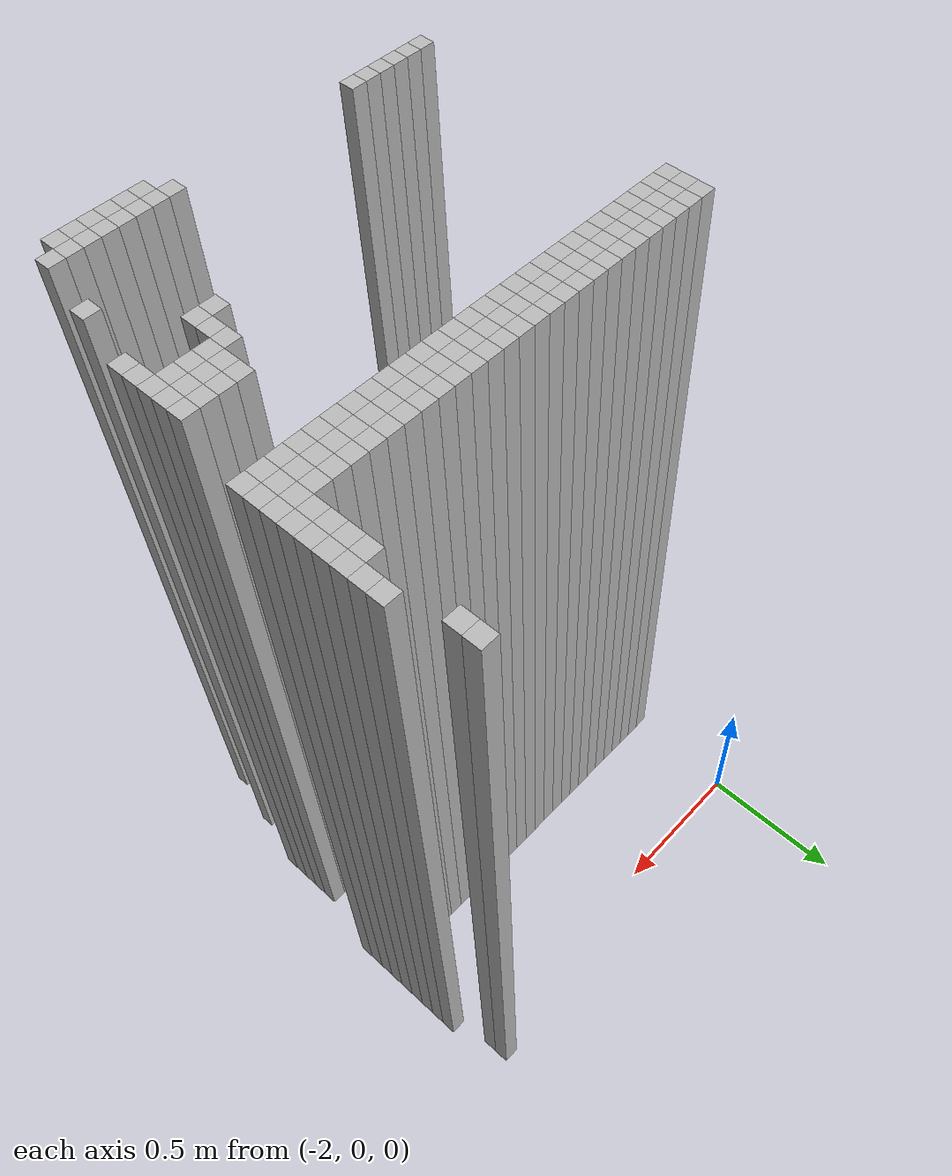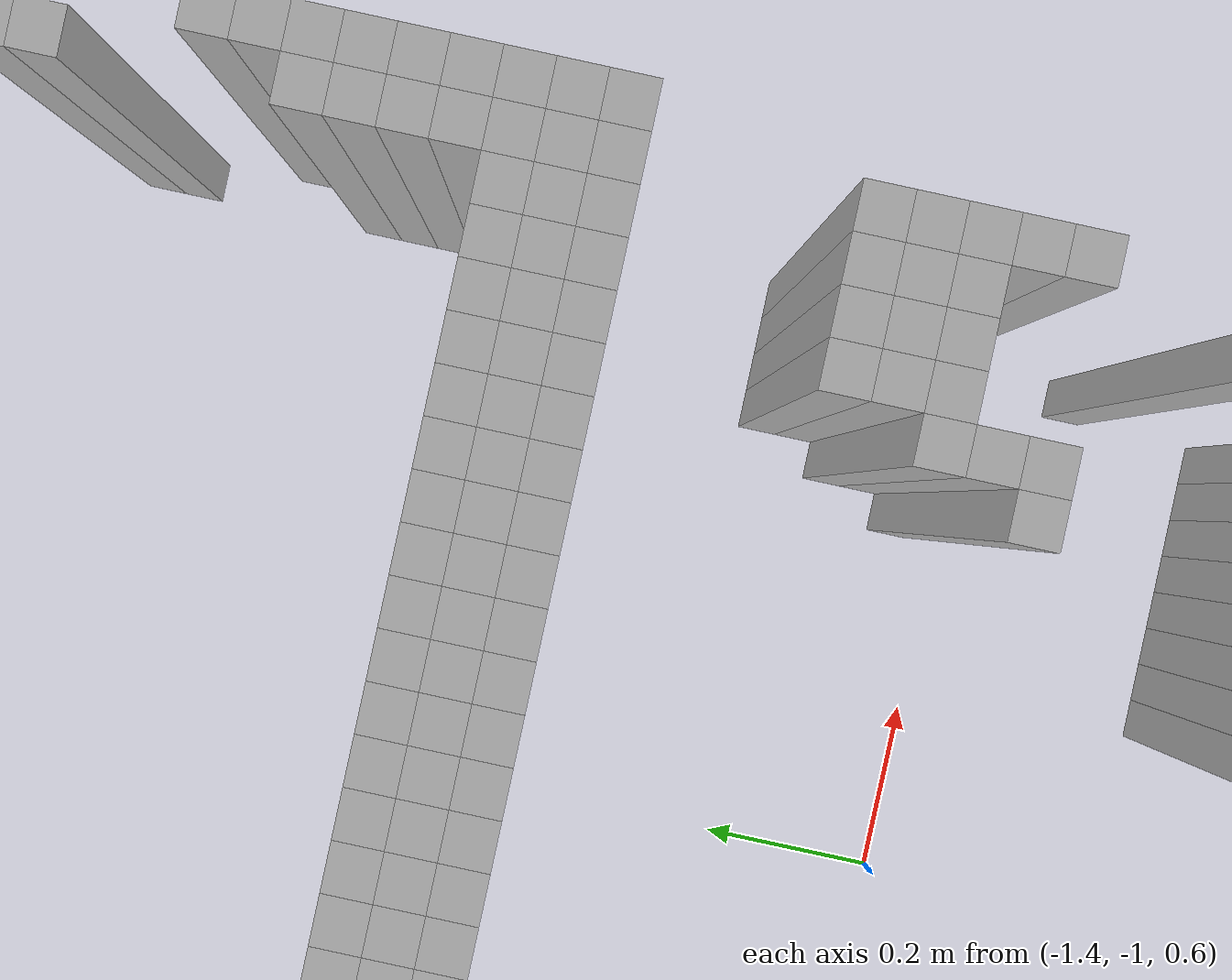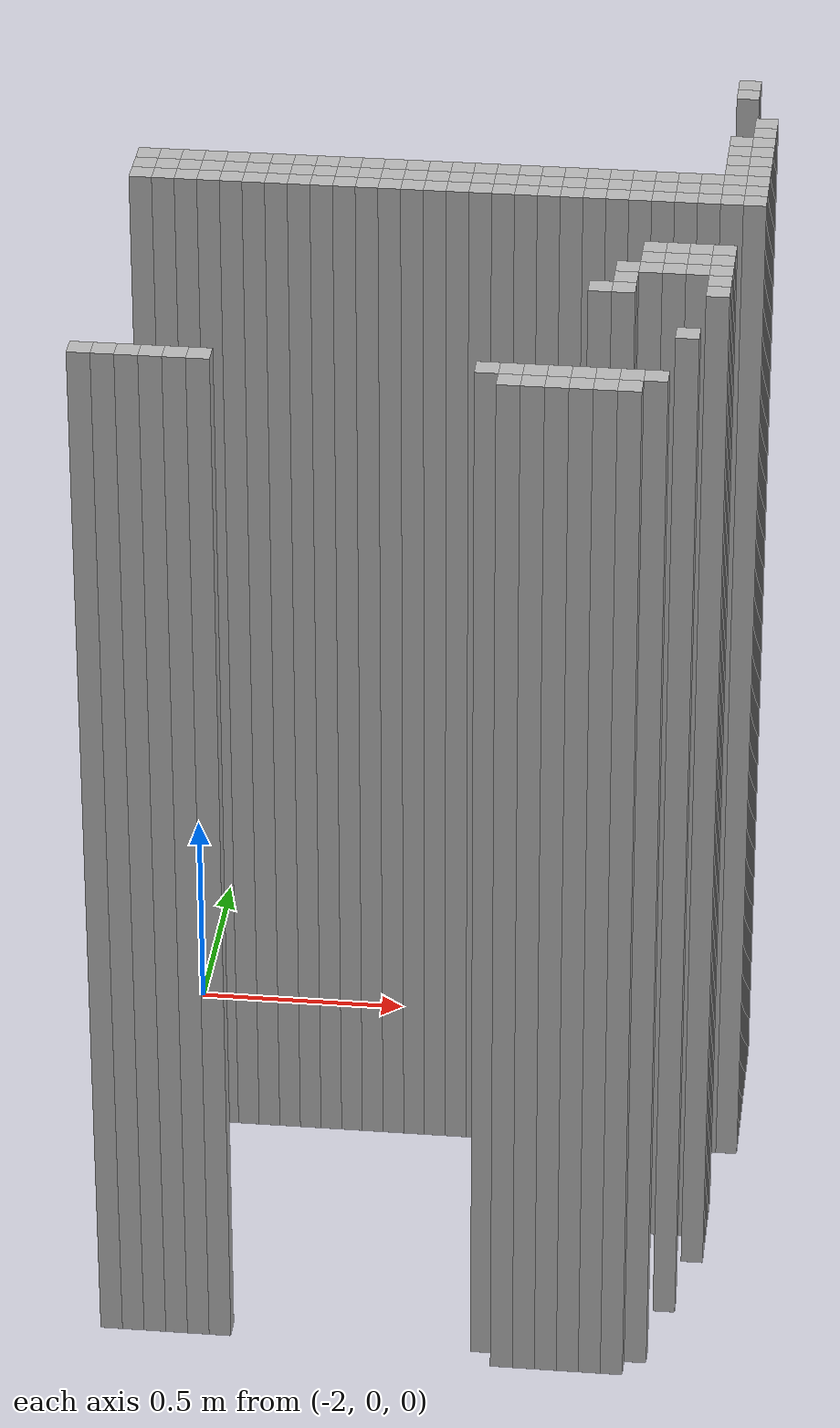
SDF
<sdf version="1.9">
 <world name="map_world">
  <model name="wall_209_152">
   <static>true</static>
   <pose>-0.711 0.080 1.250 0 0 0</pose>
   <link name="link">
    <collision name="collision"><geometry><box><size>0.050 0.050 2.500</size></box></geometry></collision>
    <visual name="visual"><geometry><box><size>0.050 0.050 2.500</size></box></geometry></visual>
   </link>
  </model>
  <model name="wall_209_153">
   <static>true</static>
   <pose>-0.711 0.030 1.250 0 0 0</pose>
   <link name="link">
    <collision name="collision"><geometry><box><size>0.050 0.050 2.500</size></box></geometry></collision>
    <visual name="visual"><geometry><box><size>0.050 0.050 2.500</size></box></geometry></visual>
   </link>
  </model>
  <model name="wall_210_156">
   <static>true</static>
   <pose>-0.661 -0.120 1.250 0 0 0</pose>
   <link name="link">
    <collision name="collision"><geometry><box><size>0.050 0.050 2.500</size></box></geometry></collision>
    <visual name="visual"><geometry><box><size>0.050 0.050 2.500</size></box></geometry></visual>
   </link>
  </model>
  <model name="wall_210_157">
   <static>true</static>
   <pose>-0.661 -0.170 1.250 0 0 0</pose>
   <link name="link">
    <collision name="collision"><geometry><box><size>0.050 0.050 2.500</size></box></geometry></collision>
    <visual name="visual"><geometry><box><size>0.050 0.050 2.500</size></box></geometry></visual>
   </link>
  </model>
  <model name="wall_209_158">
   <static>true</static>
   <pose>-0.711 -0.220 1.250 0 0 0</pose>
   <link name="link">
    <collision name="collision"><geometry><box><size>0.050 0.050 2.500</size></box></geometry></collision>
    <visual name="visual"><geometry><box><size>0.050 0.050 2.500</size></box></geometry></visual>
   </link>
  </model>
  <model name="wall_210_158">
   <static>true</static>
   <pose>-0.661 -0.220 1.250 0 0 0</pose>
   <link name="link">
    <collision name="collision"><geometry><box><size>0.050 0.050 2.500</size></box></geometry></collision>
    <visual name="visual"><geometry><box><size>0.050 0.050 2.500</size></box></geometry></visual>
   </link>
  </model>
  <model name="wall_209_159">
   <static>true</static>
   <pose>-0.711 -0.270 1.250 0 0 0</pose>
   <link name="link">
    <collision name="collision"><geometry><box><size>0.050 0.050 2.500</size></box></geometry></collision>
    <visual name="visual"><geometry><box><size>0.050 0.050 2.500</size></box></geometry></visual>
   </link>
  </model>
  <model name="wall_210_159">
   <static>true</static>
   <pose>-0.661 -0.270 1.250 0 0 0</pose>
   <link name="link">
    <collision name="collision"><geometry><box><size>0.050 0.050 2.500</size></box></geometry></collision>
    <visual name="visual"><geometry><box><size>0.050 0.050 2.500</size></box></geometry></visual>
   </link>
  </model>
  <model name="wall_209_160">
   <static>true</static>
   <pose>-0.711 -0.320 1.250 0 0 0</pose>
   <link name="link">
    <collision name="collision"><geometry><box><size>0.050 0.050 2.500</size></box></geometry></collision>
    <visual name="visual"><geometry><box><size>0.050 0.050 2.500</size></box></geometry></visual>
   </link>
  </model>
  <model name="wall_210_160">
   <static>true</static>
   <pose>-0.661 -0.320 1.250 0 0 0</pose>
   <link name="link">
    <collision name="collision"><geometry><box><size>0.050 0.050 2.500</size></box></geometry></collision>
    <visual name="visual"><geometry><box><size>0.050 0.050 2.500</size></box></geometry></visual>
   </link>
  </model>
  <model name="wall_209_161">
   <static>true</static>
   <pose>-0.711 -0.370 1.250 0 0 0</pose>
   <link name="link">
    <collision name="collision"><geometry><box><size>0.050 0.050 2.500</size></box></geometry></collision>
    <visual name="visual"><geometry><box><size>0.050 0.050 2.500</size></box></geometry></visual>
   </link>
  </model>
  <model name="wall_210_161">
   <static>true</static>
   <pose>-0.661 -0.370 1.250 0 0 0</pose>
   <link name="link">
    <collision name="collision"><geometry><box><size>0.050 0.050 2.500</size></box></geometry></collision>
    <visual name="visual"><geometry><box><size>0.050 0.050 2.500</size></box></geometry></visual>
   </link>
  </model>
  <model name="wall_183_162">
   <static>true</static>
   <pose>-2.011 -0.420 1.250 0 0 0</pose>
   <link name="link">
    <collision name="collision"><geometry><box><size>0.050 0.050 2.500</size></box></geometry></collision>
    <visual name="visual"><geometry><box><size>0.050 0.050 2.500</size></box></geometry></visual>
   </link>
  </model>
  <model name="wall_184_162">
   <static>true</static>
   <pose>-1.961 -0.420 1.250 0 0 0</pose>
   <link name="link">
    <collision name="collision"><geometry><box><size>0.050 0.050 2.500</size></box></geometry></collision>
    <visual name="visual"><geometry><box><size>0.050 0.050 2.500</size></box></geometry></visual>
   </link>
  </model>
  <model name="wall_185_162">
   <static>true</static>
   <pose>-1.911 -0.420 1.250 0 0 0</pose>
   <link name="link">
    <collision name="collision"><geometry><box><size>0.050 0.050 2.500</size></box></geometry></collision>
    <visual name="visual"><geometry><box><size>0.050 0.050 2.500</size></box></geometry></visual>
   </link>
  </model>
  <model name="wall_186_162">
   <static>true</static>
   <pose>-1.861 -0.420 1.250 0 0 0</pose>
   <link name="link">
    <collision name="collision"><geometry><box><size>0.050 0.050 2.500</size></box></geometry></collision>
    <visual name="visual"><geometry><box><size>0.050 0.050 2.500</size></box></geometry></visual>
   </link>
  </model>
  <model name="wall_187_162">
   <static>true</static>
   <pose>-1.811 -0.420 1.250 0 0 0</pose>
   <link name="link">
    <collision name="collision"><geometry><box><size>0.050 0.050 2.500</size></box></geometry></collision>
    <visual name="visual"><geometry><box><size>0.050 0.050 2.500</size></box></geometry></visual>
   </link>
  </model>
  <model name="wall_188_162">
   <static>true</static>
   <pose>-1.761 -0.420 1.250 0 0 0</pose>
   <link name="link">
    <collision name="collision"><geometry><box><size>0.050 0.050 2.500</size></box></geometry></collision>
    <visual name="visual"><geometry><box><size>0.050 0.050 2.500</size></box></geometry></visual>
   </link>
  </model>
  <model name="wall_189_162">
   <static>true</static>
   <pose>-1.711 -0.420 1.250 0 0 0</pose>
   <link name="link">
    <collision name="collision"><geometry><box><size>0.050 0.050 2.500</size></box></geometry></collision>
    <visual name="visual"><geometry><box><size>0.050 0.050 2.500</size></box></geometry></visual>
   </link>
  </model>
  <model name="wall_190_162">
   <static>true</static>
   <pose>-1.661 -0.420 1.250 0 0 0</pose>
   <link name="link">
    <collision name="collision"><geometry><box><size>0.050 0.050 2.500</size></box></geometry></collision>
    <visual name="visual"><geometry><box><size>0.050 0.050 2.500</size></box></geometry></visual>
   </link>
  </model>
  <model name="wall_191_162">
   <static>true</static>
   <pose>-1.611 -0.420 1.250 0 0 0</pose>
   <link name="link">
    <collision name="collision"><geometry><box><size>0.050 0.050 2.500</size></box></geometry></collision>
    <visual name="visual"><geometry><box><size>0.050 0.050 2.500</size></box></geometry></visual>
   </link>
  </model>
  <model name="wall_192_162">
   <static>true</static>
   <pose>-1.561 -0.420 1.250 0 0 0</pose>
   <link name="link">
    <collision name="collision"><geometry><box><size>0.050 0.050 2.500</size></box></geometry></collision>
    <visual name="visual"><geometry><box><size>0.050 0.050 2.500</size></box></geometry></visual>
   </link>
  </model>
  <model name="wall_193_162">
   <static>true</static>
   <pose>-1.511 -0.420 1.250 0 0 0</pose>
   <link name="link">
    <collision name="collision"><geometry><box><size>0.050 0.050 2.500</size></box></geometry></collision>
    <visual name="visual"><geometry><box><size>0.050 0.050 2.500</size></box></geometry></visual>
   </link>
  </model>
  <model name="wall_194_162">
   <static>true</static>
   <pose>-1.461 -0.420 1.250 0 0 0</pose>
   <link name="link">
    <collision name="collision"><geometry><box><size>0.050 0.050 2.500</size></box></geometry></collision>
    <visual name="visual"><geometry><box><size>0.050 0.050 2.500</size></box></geometry></visual>
   </link>
  </model>
  <model name="wall_195_162">
   <static>true</static>
   <pose>-1.411 -0.420 1.250 0 0 0</pose>
   <link name="link">
    <collision name="collision"><geometry><box><size>0.050 0.050 2.500</size></box></geometry></collision>
    <visual name="visual"><geometry><box><size>0.050 0.050 2.500</size></box></geometry></visual>
   </link>
  </model>
  <model name="wall_196_162">
   <static>true</static>
   <pose>-1.361 -0.420 1.250 0 0 0</pose>
   <link name="link">
    <collision name="collision"><geometry><box><size>0.050 0.050 2.500</size></box></geometry></collision>
    <visual name="visual"><geometry><box><size>0.050 0.050 2.500</size></box></geometry></visual>
   </link>
  </model>
  <model name="wall_197_162">
   <static>true</static>
   <pose>-1.311 -0.420 1.250 0 0 0</pose>
   <link name="link">
    <collision name="collision"><geometry><box><size>0.050 0.050 2.500</size></box></geometry></collision>
    <visual name="visual"><geometry><box><size>0.050 0.050 2.500</size></box></geometry></visual>
   </link>
  </model>
  <model name="wall_198_162">
   <static>true</static>
   <pose>-1.261 -0.420 1.250 0 0 0</pose>
   <link name="link">
    <collision name="collision"><geometry><box><size>0.050 0.050 2.500</size></box></geometry></collision>
    <visual name="visual"><geometry><box><size>0.050 0.050 2.500</size></box></geometry></visual>
   </link>
  </model>
  <model name="wall_199_162">
   <static>true</static>
   <pose>-1.211 -0.420 1.250 0 0 0</pose>
   <link name="link">
    <collision name="collision"><geometry><box><size>0.050 0.050 2.500</size></box></geometry></collision>
    <visual name="visual"><geometry><box><size>0.050 0.050 2.500</size></box></geometry></visual>
   </link>
  </model>
  <model name="wall_200_162">
   <static>true</static>
   <pose>-1.161 -0.420 1.250 0 0 0</pose>
   <link name="link">
    <collision name="collision"><geometry><box><size>0.050 0.050 2.500</size></box></geometry></collision>
    <visual name="visual"><geometry><box><size>0.050 0.050 2.500</size></box></geometry></visual>
   </link>
  </model>
  <model name="wall_201_162">
   <static>true</static>
   <pose>-1.111 -0.420 1.250 0 0 0</pose>
   <link name="link">
    <collision name="collision"><geometry><box><size>0.050 0.050 2.500</size></box></geometry></collision>
    <visual name="visual"><geometry><box><size>0.050 0.050 2.500</size></box></geometry></visual>
   </link>
  </model>
  <model name="wall_202_162">
   <static>true</static>
   <pose>-1.061 -0.420 1.250 0 0 0</pose>
   <link name="link">
    <collision name="collision"><geometry><box><size>0.050 0.050 2.500</size></box></geometry></collision>
    <visual name="visual"><geometry><box><size>0.050 0.050 2.500</size></box></geometry></visual>
   </link>
  </model>
  <model name="wall_203_162">
   <static>true</static>
   <pose>-1.011 -0.420 1.250 0 0 0</pose>
   <link name="link">
    <collision name="collision"><geometry><box><size>0.050 0.050 2.500</size></box></geometry></collision>
    <visual name="visual"><geometry><box><size>0.050 0.050 2.500</size></box></geometry></visual>
   </link>
  </model>
  <model name="wall_204_162">
   <static>true</static>
   <pose>-0.961 -0.420 1.250 0 0 0</pose>
   <link name="link">
    <collision name="collision"><geometry><box><size>0.050 0.050 2.500</size></box></geometry></collision>
    <visual name="visual"><geometry><box><size>0.050 0.050 2.500</size></box></geometry></visual>
   </link>
  </model>
  <model name="wall_205_162">
   <static>true</static>
   <pose>-0.911 -0.420 1.250 0 0 0</pose>
   <link name="link">
    <collision name="collision"><geometry><box><size>0.050 0.050 2.500</size></box></geometry></collision>
    <visual name="visual"><geometry><box><size>0.050 0.050 2.500</size></box></geometry></visual>
   </link>
  </model>
  <model name="wall_206_162">
   <static>true</static>
   <pose>-0.861 -0.420 1.250 0 0 0</pose>
   <link name="link">
    <collision name="collision"><geometry><box><size>0.050 0.050 2.500</size></box></geometry></collision>
    <visual name="visual"><geometry><box><size>0.050 0.050 2.500</size></box></geometry></visual>
   </link>
  </model>
  <model name="wall_207_162">
   <static>true</static>
   <pose>-0.811 -0.420 1.250 0 0 0</pose>
   <link name="link">
    <collision name="collision"><geometry><box><size>0.050 0.050 2.500</size></box></geometry></collision>
    <visual name="visual"><geometry><box><size>0.050 0.050 2.500</size></box></geometry></visual>
   </link>
  </model>
  <model name="wall_208_162">
   <static>true</static>
   <pose>-0.761 -0.420 1.250 0 0 0</pose>
   <link name="link">
    <collision name="collision"><geometry><box><size>0.050 0.050 2.500</size></box></geometry></collision>
    <visual name="visual"><geometry><box><size>0.050 0.050 2.500</size></box></geometry></visual>
   </link>
  </model>
  <model name="wall_209_162">
   <static>true</static>
   <pose>-0.711 -0.420 1.250 0 0 0</pose>
   <link name="link">
    <collision name="collision"><geometry><box><size>0.050 0.050 2.500</size></box></geometry></collision>
    <visual name="visual"><geometry><box><size>0.050 0.050 2.500</size></box></geometry></visual>
   </link>
  </model>
  <model name="wall_210_162">
   <static>true</static>
   <pose>-0.661 -0.420 1.250 0 0 0</pose>
   <link name="link">
    <collision name="collision"><geometry><box><size>0.050 0.050 2.500</size></box></geometry></collision>
    <visual name="visual"><geometry><box><size>0.050 0.050 2.500</size></box></geometry></visual>
   </link>
  </model>
  <model name="wall_183_163">
   <static>true</static>
   <pose>-2.011 -0.470 1.250 0 0 0</pose>
   <link name="link">
    <collision name="collision"><geometry><box><size>0.050 0.050 2.500</size></box></geometry></collision>
    <visual name="visual"><geometry><box><size>0.050 0.050 2.500</size></box></geometry></visual>
   </link>
  </model>
  <model name="wall_184_163">
   <static>true</static>
   <pose>-1.961 -0.470 1.250 0 0 0</pose>
   <link name="link">
    <collision name="collision"><geometry><box><size>0.050 0.050 2.500</size></box></geometry></collision>
    <visual name="visual"><geometry><box><size>0.050 0.050 2.500</size></box></geometry></visual>
   </link>
  </model>
  <model name="wall_185_163">
   <static>true</static>
   <pose>-1.911 -0.470 1.250 0 0 0</pose>
   <link name="link">
    <collision name="collision"><geometry><box><size>0.050 0.050 2.500</size></box></geometry></collision>
    <visual name="visual"><geometry><box><size>0.050 0.050 2.500</size></box></geometry></visual>
   </link>
  </model>
  <model name="wall_186_163">
   <static>true</static>
   <pose>-1.861 -0.470 1.250 0 0 0</pose>
   <link name="link">
    <collision name="collision"><geometry><box><size>0.050 0.050 2.500</size></box></geometry></collision>
    <visual name="visual"><geometry><box><size>0.050 0.050 2.500</size></box></geometry></visual>
   </link>
  </model>
  <model name="wall_187_163">
   <static>true</static>
   <pose>-1.811 -0.470 1.250 0 0 0</pose>
   <link name="link">
    <collision name="collision"><geometry><box><size>0.050 0.050 2.500</size></box></geometry></collision>
    <visual name="visual"><geometry><box><size>0.050 0.050 2.500</size></box></geometry></visual>
   </link>
  </model>
  <model name="wall_188_163">
   <static>true</static>
   <pose>-1.761 -0.470 1.250 0 0 0</pose>
   <link name="link">
    <collision name="collision"><geometry><box><size>0.050 0.050 2.500</size></box></geometry></collision>
    <visual name="visual"><geometry><box><size>0.050 0.050 2.500</size></box></geometry></visual>
   </link>
  </model>
  <model name="wall_189_163">
   <static>true</static>
   <pose>-1.711 -0.470 1.250 0 0 0</pose>
   <link name="link">
    <collision name="collision"><geometry><box><size>0.050 0.050 2.500</size></box></geometry></collision>
    <visual name="visual"><geometry><box><size>0.050 0.050 2.500</size></box></geometry></visual>
   </link>
  </model>
  <model name="wall_190_163">
   <static>true</static>
   <pose>-1.661 -0.470 1.250 0 0 0</pose>
   <link name="link">
    <collision name="collision"><geometry><box><size>0.050 0.050 2.500</size></box></geometry></collision>
    <visual name="visual"><geometry><box><size>0.050 0.050 2.500</size></box></geometry></visual>
   </link>
  </model>
  <model name="wall_191_163">
   <static>true</static>
   <pose>-1.611 -0.470 1.250 0 0 0</pose>
   <link name="link">
    <collision name="collision"><geometry><box><size>0.050 0.050 2.500</size></box></geometry></collision>
    <visual name="visual"><geometry><box><size>0.050 0.050 2.500</size></box></geometry></visual>
   </link>
  </model>
  <model name="wall_192_163">
   <static>true</static>
   <pose>-1.561 -0.470 1.250 0 0 0</pose>
   <link name="link">
    <collision name="collision"><geometry><box><size>0.050 0.050 2.500</size></box></geometry></collision>
    <visual name="visual"><geometry><box><size>0.050 0.050 2.500</size></box></geometry></visual>
   </link>
  </model>
  <model name="wall_193_163">
   <static>true</static>
   <pose>-1.511 -0.470 1.250 0 0 0</pose>
   <link name="link">
    <collision name="collision"><geometry><box><size>0.050 0.050 2.500</size></box></geometry></collision>
    <visual name="visual"><geometry><box><size>0.050 0.050 2.500</size></box></geometry></visual>
   </link>
  </model>
  <model name="wall_194_163">
   <static>true</static>
   <pose>-1.461 -0.470 1.250 0 0 0</pose>
   <link name="link">
    <collision name="collision"><geometry><box><size>0.050 0.050 2.500</size></box></geometry></collision>
    <visual name="visual"><geometry><box><size>0.050 0.050 2.500</size></box></geometry></visual>
   </link>
  </model>
  <model name="wall_195_163">
   <static>true</static>
   <pose>-1.411 -0.470 1.250 0 0 0</pose>
   <link name="link">
    <collision name="collision"><geometry><box><size>0.050 0.050 2.500</size></box></geometry></collision>
    <visual name="visual"><geometry><box><size>0.050 0.050 2.500</size></box></geometry></visual>
   </link>
  </model>
  <model name="wall_196_163">
   <static>true</static>
   <pose>-1.361 -0.470 1.250 0 0 0</pose>
   <link name="link">
    <collision name="collision"><geometry><box><size>0.050 0.050 2.500</size></box></geometry></collision>
    <visual name="visual"><geometry><box><size>0.050 0.050 2.500</size></box></geometry></visual>
   </link>
  </model>
  <model name="wall_197_163">
   <static>true</static>
   <pose>-1.311 -0.470 1.250 0 0 0</pose>
   <link name="link">
    <collision name="collision"><geometry><box><size>0.050 0.050 2.500</size></box></geometry></collision>
    <visual name="visual"><geometry><box><size>0.050 0.050 2.500</size></box></geometry></visual>
   </link>
  </model>
  <model name="wall_198_163">
   <static>true</static>
   <pose>-1.261 -0.470 1.250 0 0 0</pose>
   <link name="link">
    <collision name="collision"><geometry><box><size>0.050 0.050 2.500</size></box></geometry></collision>
    <visual name="visual"><geometry><box><size>0.050 0.050 2.500</size></box></geometry></visual>
   </link>
  </model>
  <model name="wall_199_163">
   <static>true</static>
   <pose>-1.211 -0.470 1.250 0 0 0</pose>
   <link name="link">
    <collision name="collision"><geometry><box><size>0.050 0.050 2.500</size></box></geometry></collision>
    <visual name="visual"><geometry><box><size>0.050 0.050 2.500</size></box></geometry></visual>
   </link>
  </model>
  <model name="wall_200_163">
   <static>true</static>
   <pose>-1.161 -0.470 1.250 0 0 0</pose>
   <link name="link">
    <collision name="collision"><geometry><box><size>0.050 0.050 2.500</size></box></geometry></collision>
    <visual name="visual"><geometry><box><size>0.050 0.050 2.500</size></box></geometry></visual>
   </link>
  </model>
  <model name="wall_201_163">
   <static>true</static>
   <pose>-1.111 -0.470 1.250 0 0 0</pose>
   <link name="link">
    <collision name="collision"><geometry><box><size>0.050 0.050 2.500</size></box></geometry></collision>
    <visual name="visual"><geometry><box><size>0.050 0.050 2.500</size></box></geometry></visual>
   </link>
  </model>
  <model name="wall_202_163">
   <static>true</static>
   <pose>-1.061 -0.470 1.250 0 0 0</pose>
   <link name="link">
    <collision name="collision"><geometry><box><size>0.050 0.050 2.500</size></box></geometry></collision>
    <visual name="visual"><geometry><box><size>0.050 0.050 2.500</size></box></geometry></visual>
   </link>
  </model>
  <model name="wall_203_163">
   <static>true</static>
   <pose>-1.011 -0.470 1.250 0 0 0</pose>
   <link name="link">
    <collision name="collision"><geometry><box><size>0.050 0.050 2.500</size></box></geometry></collision>
    <visual name="visual"><geometry><box><size>0.050 0.050 2.500</size></box></geometry></visual>
   </link>
  </model>
  <model name="wall_204_163">
   <static>true</static>
   <pose>-0.961 -0.470 1.250 0 0 0</pose>
   <link name="link">
    <collision name="collision"><geometry><box><size>0.050 0.050 2.500</size></box></geometry></collision>
    <visual name="visual"><geometry><box><size>0.050 0.050 2.500</size></box></geometry></visual>
   </link>
  </model>
  <model name="wall_205_163">
   <static>true</static>
   <pose>-0.911 -0.470 1.250 0 0 0</pose>
   <link name="link">
    <collision name="collision"><geometry><box><size>0.050 0.050 2.500</size></box></geometry></collision>
    <visual name="visual"><geometry><box><size>0.050 0.050 2.500</size></box></geometry></visual>
   </link>
  </model>
  <model name="wall_206_163">
   <static>true</static>
   <pose>-0.861 -0.470 1.250 0 0 0</pose>
   <link name="link">
    <collision name="collision"><geometry><box><size>0.050 0.050 2.500</size></box></geometry></collision>
    <visual name="visual"><geometry><box><size>0.050 0.050 2.500</size></box></geometry></visual>
   </link>
  </model>
  <model name="wall_207_163">
   <static>true</static>
   <pose>-0.811 -0.470 1.250 0 0 0</pose>
   <link name="link">
    <collision name="collision"><geometry><box><size>0.050 0.050 2.500</size></box></geometry></collision>
    <visual name="visual"><geometry><box><size>0.050 0.050 2.500</size></box></geometry></visual>
   </link>
  </model>
  <model name="wall_208_163">
   <static>true</static>
   <pose>-0.761 -0.470 1.250 0 0 0</pose>
   <link name="link">
    <collision name="collision"><geometry><box><size>0.050 0.050 2.500</size></box></geometry></collision>
    <visual name="visual"><geometry><box><size>0.050 0.050 2.500</size></box></geometry></visual>
   </link>
  </model>
  <model name="wall_209_163">
   <static>true</static>
   <pose>-0.711 -0.470 1.250 0 0 0</pose>
   <link name="link">
    <collision name="collision"><geometry><box><size>0.050 0.050 2.500</size></box></geometry></collision>
    <visual name="visual"><geometry><box><size>0.050 0.050 2.500</size></box></geometry></visual>
   </link>
  </model>
  <model name="wall_210_163">
   <static>true</static>
   <pose>-0.661 -0.470 1.250 0 0 0</pose>
   <link name="link">
    <collision name="collision"><geometry><box><size>0.050 0.050 2.500</size></box></geometry></collision>
    <visual name="visual"><geometry><box><size>0.050 0.050 2.500</size></box></geometry></visual>
   </link>
  </model>
  <model name="wall_183_164">
   <static>true</static>
   <pose>-2.011 -0.520 1.250 0 0 0</pose>
   <link name="link">
    <collision name="collision"><geometry><box><size>0.050 0.050 2.500</size></box></geometry></collision>
    <visual name="visual"><geometry><box><size>0.050 0.050 2.500</size></box></geometry></visual>
   </link>
  </model>
  <model name="wall_184_164">
   <static>true</static>
   <pose>-1.961 -0.520 1.250 0 0 0</pose>
   <link name="link">
    <collision name="collision"><geometry><box><size>0.050 0.050 2.500</size></box></geometry></collision>
    <visual name="visual"><geometry><box><size>0.050 0.050 2.500</size></box></geometry></visual>
   </link>
  </model>
  <model name="wall_185_164">
   <static>true</static>
   <pose>-1.911 -0.520 1.250 0 0 0</pose>
   <link name="link">
    <collision name="collision"><geometry><box><size>0.050 0.050 2.500</size></box></geometry></collision>
    <visual name="visual"><geometry><box><size>0.050 0.050 2.500</size></box></geometry></visual>
   </link>
  </model>
  <model name="wall_186_164">
   <static>true</static>
   <pose>-1.861 -0.520 1.250 0 0 0</pose>
   <link name="link">
    <collision name="collision"><geometry><box><size>0.050 0.050 2.500</size></box></geometry></collision>
    <visual name="visual"><geometry><box><size>0.050 0.050 2.500</size></box></geometry></visual>
   </link>
  </model>
  <model name="wall_187_164">
   <static>true</static>
   <pose>-1.811 -0.520 1.250 0 0 0</pose>
   <link name="link">
    <collision name="collision"><geometry><box><size>0.050 0.050 2.500</size></box></geometry></collision>
    <visual name="visual"><geometry><box><size>0.050 0.050 2.500</size></box></geometry></visual>
   </link>
  </model>
  <model name="wall_188_164">
   <static>true</static>
   <pose>-1.761 -0.520 1.250 0 0 0</pose>
   <link name="link">
    <collision name="collision"><geometry><box><size>0.050 0.050 2.500</size></box></geometry></collision>
    <visual name="visual"><geometry><box><size>0.050 0.050 2.500</size></box></geometry></visual>
   </link>
  </model>
  <model name="wall_189_164">
   <static>true</static>
   <pose>-1.711 -0.520 1.250 0 0 0</pose>
   <link name="link">
    <collision name="collision"><geometry><box><size>0.050 0.050 2.500</size></box></geometry></collision>
    <visual name="visual"><geometry><box><size>0.050 0.050 2.500</size></box></geometry></visual>
   </link>
  </model>
  <model name="wall_190_164">
   <static>true</static>
   <pose>-1.661 -0.520 1.250 0 0 0</pose>
   <link name="link">
    <collision name="collision"><geometry><box><size>0.050 0.050 2.500</size></box></geometry></collision>
    <visual name="visual"><geometry><box><size>0.050 0.050 2.500</size></box></geometry></visual>
   </link>
  </model>
  <model name="wall_191_164">
   <static>true</static>
   <pose>-1.611 -0.520 1.250 0 0 0</pose>
   <link name="link">
    <collision name="collision"><geometry><box><size>0.050 0.050 2.500</size></box></geometry></collision>
    <visual name="visual"><geometry><box><size>0.050 0.050 2.500</size></box></geometry></visual>
   </link>
  </model>
  <model name="wall_192_164">
   <static>true</static>
   <pose>-1.561 -0.520 1.250 0 0 0</pose>
   <link name="link">
    <collision name="collision"><geometry><box><size>0.050 0.050 2.500</size></box></geometry></collision>
    <visual name="visual"><geometry><box><size>0.050 0.050 2.500</size></box></geometry></visual>
   </link>
  </model>
  <model name="wall_193_164">
   <static>true</static>
   <pose>-1.511 -0.520 1.250 0 0 0</pose>
   <link name="link">
    <collision name="collision"><geometry><box><size>0.050 0.050 2.500</size></box></geometry></collision>
    <visual name="visual"><geometry><box><size>0.050 0.050 2.500</size></box></geometry></visual>
   </link>
  </model>
  <model name="wall_194_164">
   <static>true</static>
   <pose>-1.461 -0.520 1.250 0 0 0</pose>
   <link name="link">
    <collision name="collision"><geometry><box><size>0.050 0.050 2.500</size></box></geometry></collision>
    <visual name="visual"><geometry><box><size>0.050 0.050 2.500</size></box></geometry></visual>
   </link>
  </model>
  <model name="wall_195_164">
   <static>true</static>
   <pose>-1.411 -0.520 1.250 0 0 0</pose>
   <link name="link">
    <collision name="collision"><geometry><box><size>0.050 0.050 2.500</size></box></geometry></collision>
    <visual name="visual"><geometry><box><size>0.050 0.050 2.500</size></box></geometry></visual>
   </link>
  </model>
  <model name="wall_196_164">
   <static>true</static>
   <pose>-1.361 -0.520 1.250 0 0 0</pose>
   <link name="link">
    <collision name="collision"><geometry><box><size>0.050 0.050 2.500</size></box></geometry></collision>
    <visual name="visual"><geometry><box><size>0.050 0.050 2.500</size></box></geometry></visual>
   </link>
  </model>
  <model name="wall_197_164">
   <static>true</static>
   <pose>-1.311 -0.520 1.250 0 0 0</pose>
   <link name="link">
    <collision name="collision"><geometry><box><size>0.050 0.050 2.500</size></box></geometry></collision>
    <visual name="visual"><geometry><box><size>0.050 0.050 2.500</size></box></geometry></visual>
   </link>
  </model>
  <model name="wall_198_164">
   <static>true</static>
   <pose>-1.261 -0.520 1.250 0 0 0</pose>
   <link name="link">
    <collision name="collision"><geometry><box><size>0.050 0.050 2.500</size></box></geometry></collision>
    <visual name="visual"><geometry><box><size>0.050 0.050 2.500</size></box></geometry></visual>
   </link>
  </model>
  <model name="wall_199_164">
   <static>true</static>
   <pose>-1.211 -0.520 1.250 0 0 0</pose>
   <link name="link">
    <collision name="collision"><geometry><box><size>0.050 0.050 2.500</size></box></geometry></collision>
    <visual name="visual"><geometry><box><size>0.050 0.050 2.500</size></box></geometry></visual>
   </link>
  </model>
  <model name="wall_200_164">
   <static>true</static>
   <pose>-1.161 -0.520 1.250 0 0 0</pose>
   <link name="link">
    <collision name="collision"><geometry><box><size>0.050 0.050 2.500</size></box></geometry></collision>
    <visual name="visual"><geometry><box><size>0.050 0.050 2.500</size></box></geometry></visual>
   </link>
  </model>
  <model name="wall_201_164">
   <static>true</static>
   <pose>-1.111 -0.520 1.250 0 0 0</pose>
   <link name="link">
    <collision name="collision"><geometry><box><size>0.050 0.050 2.500</size></box></geometry></collision>
    <visual name="visual"><geometry><box><size>0.050 0.050 2.500</size></box></geometry></visual>
   </link>
  </model>
  <model name="wall_202_164">
   <static>true</static>
   <pose>-1.061 -0.520 1.250 0 0 0</pose>
   <link name="link">
    <collision name="collision"><geometry><box><size>0.050 0.050 2.500</size></box></geometry></collision>
    <visual name="visual"><geometry><box><size>0.050 0.050 2.500</size></box></geometry></visual>
   </link>
  </model>
  <model name="wall_203_164">
   <static>true</static>
   <pose>-1.011 -0.520 1.250 0 0 0</pose>
   <link name="link">
    <collision name="collision"><geometry><box><size>0.050 0.050 2.500</size></box></geometry></collision>
    <visual name="visual"><geometry><box><size>0.050 0.050 2.500</size></box></geometry></visual>
   </link>
  </model>
  <model name="wall_204_164">
   <static>true</static>
   <pose>-0.961 -0.520 1.250 0 0 0</pose>
   <link name="link">
    <collision name="collision"><geometry><box><size>0.050 0.050 2.500</size></box></geometry></collision>
    <visual name="visual"><geometry><box><size>0.050 0.050 2.500</size></box></geometry></visual>
   </link>
  </model>
  <model name="wall_205_164">
   <static>true</static>
   <pose>-0.911 -0.520 1.250 0 0 0</pose>
   <link name="link">
    <collision name="collision"><geometry><box><size>0.050 0.050 2.500</size></box></geometry></collision>
    <visual name="visual"><geometry><box><size>0.050 0.050 2.500</size></box></geometry></visual>
   </link>
  </model>
  <model name="wall_206_164">
   <static>true</static>
   <pose>-0.861 -0.520 1.250 0 0 0</pose>
   <link name="link">
    <collision name="collision"><geometry><box><size>0.050 0.050 2.500</size></box></geometry></collision>
    <visual name="visual"><geometry><box><size>0.050 0.050 2.500</size></box></geometry></visual>
   </link>
  </model>
  <model name="wall_207_164">
   <static>true</static>
   <pose>-0.811 -0.520 1.250 0 0 0</pose>
   <link name="link">
    <collision name="collision"><geometry><box><size>0.050 0.050 2.500</size></box></geometry></collision>
    <visual name="visual"><geometry><box><size>0.050 0.050 2.500</size></box></geometry></visual>
   </link>
  </model>
  <model name="wall_208_164">
   <static>true</static>
   <pose>-0.761 -0.520 1.250 0 0 0</pose>
   <link name="link">
    <collision name="collision"><geometry><box><size>0.050 0.050 2.500</size></box></geometry></collision>
    <visual name="visual"><geometry><box><size>0.050 0.050 2.500</size></box></geometry></visual>
   </link>
  </model>
  <model name="wall_209_164">
   <static>true</static>
   <pose>-0.711 -0.520 1.250 0 0 0</pose>
   <link name="link">
    <collision name="collision"><geometry><box><size>0.050 0.050 2.500</size></box></geometry></collision>
    <visual name="visual"><geometry><box><size>0.050 0.050 2.500</size></box></geometry></visual>
   </link>
  </model>
  <model name="wall_210_164">
   <static>true</static>
   <pose>-0.661 -0.520 1.250 0 0 0</pose>
   <link name="link">
    <collision name="collision"><geometry><box><size>0.050 0.050 2.500</size></box></geometry></collision>
    <visual name="visual"><geometry><box><size>0.050 0.050 2.500</size></box></geometry></visual>
   </link>
  </model>
  <model name="wall_206_169">
   <static>true</static>
   <pose>-0.861 -0.770 1.250 0 0 0</pose>
   <link name="link">
    <collision name="collision"><geometry><box><size>0.050 0.050 2.500</size></box></geometry></collision>
    <visual name="visual"><geometry><box><size>0.050 0.050 2.500</size></box></geometry></visual>
   </link>
  </model>
  <model name="wall_207_169">
   <static>true</static>
   <pose>-0.811 -0.770 1.250 0 0 0</pose>
   <link name="link">
    <collision name="collision"><geometry><box><size>0.050 0.050 2.500</size></box></geometry></collision>
    <visual name="visual"><geometry><box><size>0.050 0.050 2.500</size></box></geometry></visual>
   </link>
  </model>
  <model name="wall_208_169">
   <static>true</static>
   <pose>-0.761 -0.770 1.250 0 0 0</pose>
   <link name="link">
    <collision name="collision"><geometry><box><size>0.050 0.050 2.500</size></box></geometry></collision>
    <visual name="visual"><geometry><box><size>0.050 0.050 2.500</size></box></geometry></visual>
   </link>
  </model>
  <model name="wall_209_169">
   <static>true</static>
   <pose>-0.711 -0.770 1.250 0 0 0</pose>
   <link name="link">
    <collision name="collision"><geometry><box><size>0.050 0.050 2.500</size></box></geometry></collision>
    <visual name="visual"><geometry><box><size>0.050 0.050 2.500</size></box></geometry></visual>
   </link>
  </model>
  <model name="wall_206_170">
   <static>true</static>
   <pose>-0.861 -0.820 1.250 0 0 0</pose>
   <link name="link">
    <collision name="collision"><geometry><box><size>0.050 0.050 2.500</size></box></geometry></collision>
    <visual name="visual"><geometry><box><size>0.050 0.050 2.500</size></box></geometry></visual>
   </link>
  </model>
  <model name="wall_207_170">
   <static>true</static>
   <pose>-0.811 -0.820 1.250 0 0 0</pose>
   <link name="link">
    <collision name="collision"><geometry><box><size>0.050 0.050 2.500</size></box></geometry></collision>
    <visual name="visual"><geometry><box><size>0.050 0.050 2.500</size></box></geometry></visual>
   </link>
  </model>
  <model name="wall_208_170">
   <static>true</static>
   <pose>-0.761 -0.820 1.250 0 0 0</pose>
   <link name="link">
    <collision name="collision"><geometry><box><size>0.050 0.050 2.500</size></box></geometry></collision>
    <visual name="visual"><geometry><box><size>0.050 0.050 2.500</size></box></geometry></visual>
   </link>
  </model>
  <model name="wall_209_170">
   <static>true</static>
   <pose>-0.711 -0.820 1.250 0 0 0</pose>
   <link name="link">
    <collision name="collision"><geometry><box><size>0.050 0.050 2.500</size></box></geometry></collision>
    <visual name="visual"><geometry><box><size>0.050 0.050 2.500</size></box></geometry></visual>
   </link>
  </model>
  <model name="wall_205_171">
   <static>true</static>
   <pose>-0.911 -0.870 1.250 0 0 0</pose>
   <link name="link">
    <collision name="collision"><geometry><box><size>0.050 0.050 2.500</size></box></geometry></collision>
    <visual name="visual"><geometry><box><size>0.050 0.050 2.500</size></box></geometry></visual>
   </link>
  </model>
  <model name="wall_206_171">
   <static>true</static>
   <pose>-0.861 -0.870 1.250 0 0 0</pose>
   <link name="link">
    <collision name="collision"><geometry><box><size>0.050 0.050 2.500</size></box></geometry></collision>
    <visual name="visual"><geometry><box><size>0.050 0.050 2.500</size></box></geometry></visual>
   </link>
  </model>
  <model name="wall_207_171">
   <static>true</static>
   <pose>-0.811 -0.870 1.250 0 0 0</pose>
   <link name="link">
    <collision name="collision"><geometry><box><size>0.050 0.050 2.500</size></box></geometry></collision>
    <visual name="visual"><geometry><box><size>0.050 0.050 2.500</size></box></geometry></visual>
   </link>
  </model>
  <model name="wall_208_171">
   <static>true</static>
   <pose>-0.761 -0.870 1.250 0 0 0</pose>
   <link name="link">
    <collision name="collision"><geometry><box><size>0.050 0.050 2.500</size></box></geometry></collision>
    <visual name="visual"><geometry><box><size>0.050 0.050 2.500</size></box></geometry></visual>
   </link>
  </model>
  <model name="wall_209_171">
   <static>true</static>
   <pose>-0.711 -0.870 1.250 0 0 0</pose>
   <link name="link">
    <collision name="collision"><geometry><box><size>0.050 0.050 2.500</size></box></geometry></collision>
    <visual name="visual"><geometry><box><size>0.050 0.050 2.500</size></box></geometry></visual>
   </link>
  </model>
  <model name="wall_205_172">
   <static>true</static>
   <pose>-0.911 -0.920 1.250 0 0 0</pose>
   <link name="link">
    <collision name="collision"><geometry><box><size>0.050 0.050 2.500</size></box></geometry></collision>
    <visual name="visual"><geometry><box><size>0.050 0.050 2.500</size></box></geometry></visual>
   </link>
  </model>
  <model name="wall_209_172">
   <static>true</static>
   <pose>-0.711 -0.920 1.250 0 0 0</pose>
   <link name="link">
    <collision name="collision"><geometry><box><size>0.050 0.050 2.500</size></box></geometry></collision>
    <visual name="visual"><geometry><box><size>0.050 0.050 2.500</size></box></geometry></visual>
   </link>
  </model>
  <model name="wall_204_173">
   <static>true</static>
   <pose>-0.961 -0.970 1.250 0 0 0</pose>
   <link name="link">
    <collision name="collision"><geometry><box><size>0.050 0.050 2.500</size></box></geometry></collision>
    <visual name="visual"><geometry><box><size>0.050 0.050 2.500</size></box></geometry></visual>
   </link>
  </model>
  <model name="wall_205_173">
   <static>true</static>
   <pose>-0.911 -0.970 1.250 0 0 0</pose>
   <link name="link">
    <collision name="collision"><geometry><box><size>0.050 0.050 2.500</size></box></geometry></collision>
    <visual name="visual"><geometry><box><size>0.050 0.050 2.500</size></box></geometry></visual>
   </link>
  </model>
  <model name="wall_209_173">
   <static>true</static>
   <pose>-0.711 -0.970 1.250 0 0 0</pose>
   <link name="link">
    <collision name="collision"><geometry><box><size>0.050 0.050 2.500</size></box></geometry></collision>
    <visual name="visual"><geometry><box><size>0.050 0.050 2.500</size></box></geometry></visual>
   </link>
  </model>
  <model name="wall_208_177">
   <static>true</static>
   <pose>-0.761 -1.170 1.250 0 0 0</pose>
   <link name="link">
    <collision name="collision"><geometry><box><size>0.050 0.050 2.500</size></box></geometry></collision>
    <visual name="visual"><geometry><box><size>0.050 0.050 2.500</size></box></geometry></visual>
   </link>
  </model>
  <model name="wall_183_181">
   <static>true</static>
   <pose>-2.011 -1.370 1.250 0 0 0</pose>
   <link name="link">
    <collision name="collision"><geometry><box><size>0.050 0.050 2.500</size></box></geometry></collision>
    <visual name="visual"><geometry><box><size>0.050 0.050 2.500</size></box></geometry></visual>
   </link>
  </model>
  <model name="wall_184_181">
   <static>true</static>
   <pose>-1.961 -1.370 1.250 0 0 0</pose>
   <link name="link">
    <collision name="collision"><geometry><box><size>0.050 0.050 2.500</size></box></geometry></collision>
    <visual name="visual"><geometry><box><size>0.050 0.050 2.500</size></box></geometry></visual>
   </link>
  </model>
  <model name="wall_185_181">
   <static>true</static>
   <pose>-1.911 -1.370 1.250 0 0 0</pose>
   <link name="link">
    <collision name="collision"><geometry><box><size>0.050 0.050 2.500</size></box></geometry></collision>
    <visual name="visual"><geometry><box><size>0.050 0.050 2.500</size></box></geometry></visual>
   </link>
  </model>
  <model name="wall_186_181">
   <static>true</static>
   <pose>-1.861 -1.370 1.250 0 0 0</pose>
   <link name="link">
    <collision name="collision"><geometry><box><size>0.050 0.050 2.500</size></box></geometry></collision>
    <visual name="visual"><geometry><box><size>0.050 0.050 2.500</size></box></geometry></visual>
   </link>
  </model>
  <model name="wall_187_181">
   <static>true</static>
   <pose>-1.811 -1.370 1.250 0 0 0</pose>
   <link name="link">
    <collision name="collision"><geometry><box><size>0.050 0.050 2.500</size></box></geometry></collision>
    <visual name="visual"><geometry><box><size>0.050 0.050 2.500</size></box></geometry></visual>
   </link>
  </model>
  <model name="wall_188_181">
   <static>true</static>
   <pose>-1.761 -1.370 1.250 0 0 0</pose>
   <link name="link">
    <collision name="collision"><geometry><box><size>0.050 0.050 2.500</size></box></geometry></collision>
    <visual name="visual"><geometry><box><size>0.050 0.050 2.500</size></box></geometry></visual>
   </link>
  </model>
  <model name="wall_200_181">
   <static>true</static>
   <pose>-1.161 -1.370 1.250 0 0 0</pose>
   <link name="link">
    <collision name="collision"><geometry><box><size>0.050 0.050 2.500</size></box></geometry></collision>
    <visual name="visual"><geometry><box><size>0.050 0.050 2.500</size></box></geometry></visual>
   </link>
  </model>
  <model name="wall_201_181">
   <static>true</static>
   <pose>-1.111 -1.370 1.250 0 0 0</pose>
   <link name="link">
    <collision name="collision"><geometry><box><size>0.050 0.050 2.500</size></box></geometry></collision>
    <visual name="visual"><geometry><box><size>0.050 0.050 2.500</size></box></geometry></visual>
   </link>
  </model>
  <model name="wall_202_181">
   <static>true</static>
   <pose>-1.061 -1.370 1.250 0 0 0</pose>
   <link name="link">
    <collision name="collision"><geometry><box><size>0.050 0.050 2.500</size></box></geometry></collision>
    <visual name="visual"><geometry><box><size>0.050 0.050 2.500</size></box></geometry></visual>
   </link>
  </model>
  <model name="wall_203_181">
   <static>true</static>
   <pose>-1.011 -1.370 1.250 0 0 0</pose>
   <link name="link">
    <collision name="collision"><geometry><box><size>0.050 0.050 2.500</size></box></geometry></collision>
    <visual name="visual"><geometry><box><size>0.050 0.050 2.500</size></box></geometry></visual>
   </link>
  </model>
  <model name="wall_204_181">
   <static>true</static>
   <pose>-0.961 -1.370 1.250 0 0 0</pose>
   <link name="link">
    <collision name="collision"><geometry><box><size>0.050 0.050 2.500</size></box></geometry></collision>
    <visual name="visual"><geometry><box><size>0.050 0.050 2.500</size></box></geometry></visual>
   </link>
  </model>
  <model name="wall_205_181">
   <static>true</static>
   <pose>-0.911 -1.370 1.250 0 0 0</pose>
   <link name="link">
    <collision name="collision"><geometry><box><size>0.050 0.050 2.500</size></box></geometry></collision>
    <visual name="visual"><geometry><box><size>0.050 0.050 2.500</size></box></geometry></visual>
   </link>
  </model>
  <model name="wall_206_181">
   <static>true</static>
   <pose>-0.861 -1.370 1.250 0 0 0</pose>
   <link name="link">
    <collision name="collision"><geometry><box><size>0.050 0.050 2.500</size></box></geometry></collision>
    <visual name="visual"><geometry><box><size>0.050 0.050 2.500</size></box></geometry></visual>
   </link>
  </model>
  <model name="wall_207_181">
   <static>true</static>
   <pose>-0.811 -1.370 1.250 0 0 0</pose>
   <link name="link">
    <collision name="collision"><geometry><box><size>0.050 0.050 2.500</size></box></geometry></collision>
    <visual name="visual"><geometry><box><size>0.050 0.050 2.500</size></box></geometry></visual>
   </link>
  </model>
  <model name="wall_201_182">
   <static>true</static>
   <pose>-1.111 -1.420 1.250 0 0 0</pose>
   <link name="link">
    <collision name="collision"><geometry><box><size>0.050 0.050 2.500</size></box></geometry></collision>
    <visual name="visual"><geometry><box><size>0.050 0.050 2.500</size></box></geometry></visual>
   </link>
  </model>
  <model name="wall_202_182">
   <static>true</static>
   <pose>-1.061 -1.420 1.250 0 0 0</pose>
   <link name="link">
    <collision name="collision"><geometry><box><size>0.050 0.050 2.500</size></box></geometry></collision>
    <visual name="visual"><geometry><box><size>0.050 0.050 2.500</size></box></geometry></visual>
   </link>
  </model>
  <model name="wall_203_182">
   <static>true</static>
   <pose>-1.011 -1.420 1.250 0 0 0</pose>
   <link name="link">
    <collision name="collision"><geometry><box><size>0.050 0.050 2.500</size></box></geometry></collision>
    <visual name="visual"><geometry><box><size>0.050 0.050 2.500</size></box></geometry></visual>
   </link>
  </model>
  <model name="wall_204_182">
   <static>true</static>
   <pose>-0.961 -1.420 1.250 0 0 0</pose>
   <link name="link">
    <collision name="collision"><geometry><box><size>0.050 0.050 2.500</size></box></geometry></collision>
    <visual name="visual"><geometry><box><size>0.050 0.050 2.500</size></box></geometry></visual>
   </link>
  </model>
  <model name="wall_205_182">
   <static>true</static>
   <pose>-0.911 -1.420 1.250 0 0 0</pose>
   <link name="link">
    <collision name="collision"><geometry><box><size>0.050 0.050 2.500</size></box></geometry></collision>
    <visual name="visual"><geometry><box><size>0.050 0.050 2.500</size></box></geometry></visual>
   </link>
  </model>
  <model name="wall_206_182">
   <static>true</static>
   <pose>-0.861 -1.420 1.250 0 0 0</pose>
   <link name="link">
    <collision name="collision"><geometry><box><size>0.050 0.050 2.500</size></box></geometry></collision>
    <visual name="visual"><geometry><box><size>0.050 0.050 2.500</size></box></geometry></visual>
   </link>
  </model>
 </world>
</sdf>
